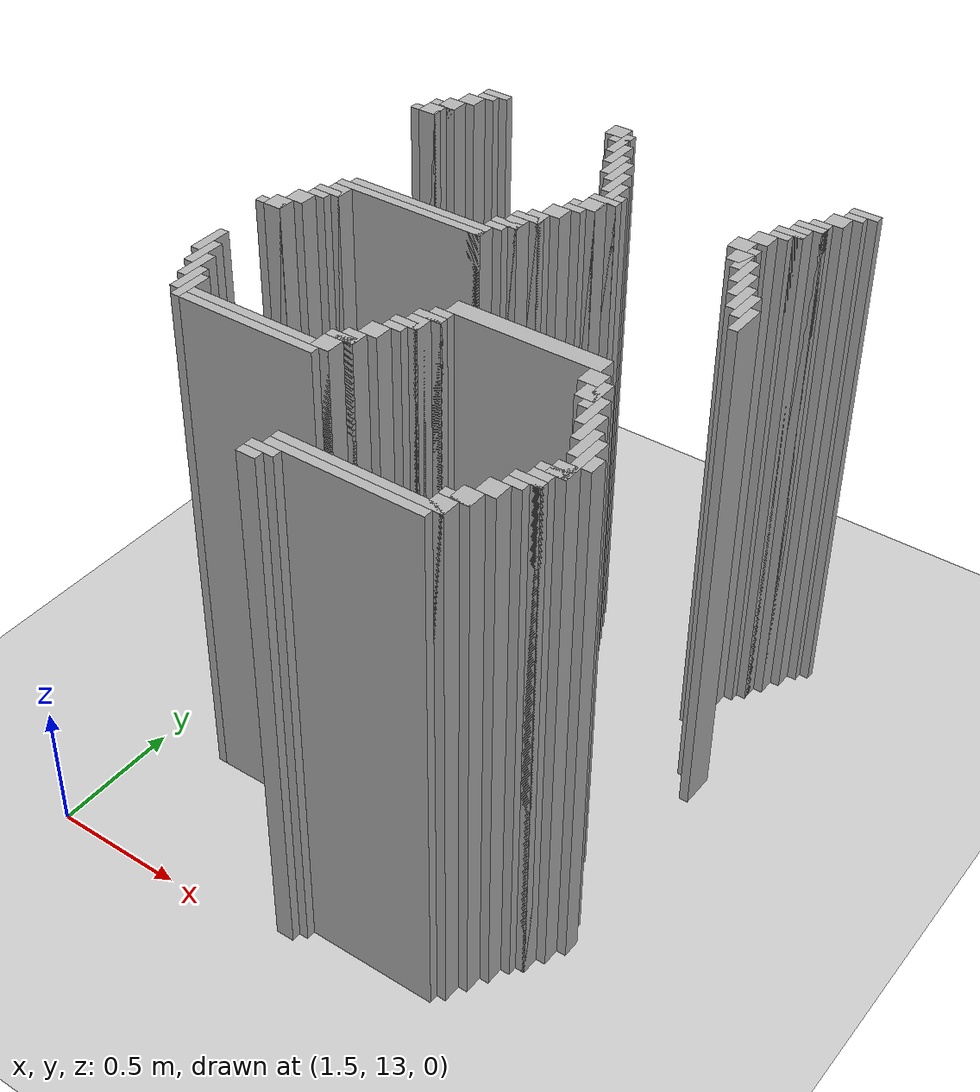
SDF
<sdf version="1.6">
 <world name="slam_world">
  <model name="ground_plane">
   <static>true</static>
   <link name="link">
    <collision name="collision">
     <geometry><plane><normal>0 0 1</normal><size>100 100</size></plane></geometry>
    </collision>
    <visual name="visual">
     <geometry><plane><normal>0 0 1</normal><size>100 100</size></plane></geometry>
     <material>
      <ambient>0.8 0.8 0.8 1</ambient>
      <diffuse>0.8 0.8 0.8 1</diffuse>
      <specular>0.8 0.8 0.8 1</specular>
     </material>
    </visual>
   </link>
  </model>
  <model name="wall_721">
   <static>true</static>
   <pose>2.262180974477958 15.243619489559164 1.0 0 0 0</pose>
   <link name="link">
    <collision name="collision">
     <geometry><box><size>0.06960556844547564 0.06960556844547564 2.0</size></box></geometry>
    </collision>
    <visual name="visual">
     <geometry><box><size>0.06960556844547564 0.06960556844547564 2.0</size></box></geometry>
     <material><ambient>0.5 0.5 0.5 1</ambient><diffuse>0.7 0.7 0.7 1</diffuse></material>
    </visual>
   </link>
  </model>
  <model name="wall_731">
   <static>true</static>
   <pose>1.75754060324826 15.226218097447795 1.0 0 0 0</pose>
   <link name="link">
    <collision name="collision">
     <geometry><box><size>0.10440835266821345 0.03480278422273782 2.0</size></box></geometry>
    </collision>
    <visual name="visual">
     <geometry><box><size>0.10440835266821345 0.03480278422273782 2.0</size></box></geometry>
     <material><ambient>0.5 0.5 0.5 1</ambient><diffuse>0.7 0.7 0.7 1</diffuse></material>
    </visual>
   </link>
  </model>
  <model name="wall_732">
   <static>true</static>
   <pose>2.3143851508120648 15.174013921113689 1.0 0 0 0</pose>
   <link name="link">
    <collision name="collision">
     <geometry><box><size>0.03480278422273782 0.13921113689095127 2.0</size></box></geometry>
    </collision>
    <visual name="visual">
     <geometry><box><size>0.03480278422273782 0.13921113689095127 2.0</size></box></geometry>
     <material><ambient>0.5 0.5 0.5 1</ambient><diffuse>0.7 0.7 0.7 1</diffuse></material>
    </visual>
   </link>
  </model>
  <model name="wall_733">
   <static>true</static>
   <pose>3.219257540603248 15.226218097447795 1.0 0 0 0</pose>
   <link name="link">
    <collision name="collision">
     <geometry><box><size>0.10440835266821345 0.03480278422273782 2.0</size></box></geometry>
    </collision>
    <visual name="visual">
     <geometry><box><size>0.10440835266821345 0.03480278422273782 2.0</size></box></geometry>
     <material><ambient>0.5 0.5 0.5 1</ambient><diffuse>0.7 0.7 0.7 1</diffuse></material>
    </visual>
   </link>
  </model>
  <model name="wall_747">
   <static>true</static>
   <pose>1.740139211136891 15.191415313225058 1.0 0 0 0</pose>
   <link name="link">
    <collision name="collision">
     <geometry><box><size>0.06960556844547564 0.03480278422273782 2.0</size></box></geometry>
    </collision>
    <visual name="visual">
     <geometry><box><size>0.06960556844547564 0.03480278422273782 2.0</size></box></geometry>
     <material><ambient>0.5 0.5 0.5 1</ambient><diffuse>0.7 0.7 0.7 1</diffuse></material>
    </visual>
   </link>
  </model>
  <model name="wall_748">
   <static>true</static>
   <pose>2.296983758700696 15.191415313225058 1.0 0 0 0</pose>
   <link name="link">
    <collision name="collision">
     <geometry><box><size>0.06960556844547564 0.03480278422273782 2.0</size></box></geometry>
    </collision>
    <visual name="visual">
     <geometry><box><size>0.06960556844547564 0.03480278422273782 2.0</size></box></geometry>
     <material><ambient>0.5 0.5 0.5 1</ambient><diffuse>0.7 0.7 0.7 1</diffuse></material>
    </visual>
   </link>
  </model>
  <model name="wall_749">
   <static>true</static>
   <pose>3.201856148491879 15.191415313225058 1.0 0 0 0</pose>
   <link name="link">
    <collision name="collision">
     <geometry><box><size>0.06960556844547564 0.03480278422273782 2.0</size></box></geometry>
    </collision>
    <visual name="visual">
     <geometry><box><size>0.06960556844547564 0.03480278422273782 2.0</size></box></geometry>
     <material><ambient>0.5 0.5 0.5 1</ambient><diffuse>0.7 0.7 0.7 1</diffuse></material>
    </visual>
   </link>
  </model>
  <model name="wall_764">
   <static>true</static>
   <pose>1.705336426914153 15.139211136890951 1.0 0 0 0</pose>
   <link name="link">
    <collision name="collision">
     <geometry><box><size>0.06960556844547564 0.06960556844547564 2.0</size></box></geometry>
    </collision>
    <visual name="visual">
     <geometry><box><size>0.06960556844547564 0.06960556844547564 2.0</size></box></geometry>
     <material><ambient>0.5 0.5 0.5 1</ambient><diffuse>0.7 0.7 0.7 1</diffuse></material>
    </visual>
   </link>
  </model>
  <model name="wall_765">
   <static>true</static>
   <pose>2.3491879350348026 15.104408352668212 1.0 0 0 0</pose>
   <link name="link">
    <collision name="collision">
     <geometry><box><size>0.03480278422273782 0.13921113689095127 2.0</size></box></geometry>
    </collision>
    <visual name="visual">
     <geometry><box><size>0.03480278422273782 0.13921113689095127 2.0</size></box></geometry>
     <material><ambient>0.5 0.5 0.5 1</ambient><diffuse>0.7 0.7 0.7 1</diffuse></material>
    </visual>
   </link>
  </model>
  <model name="wall_766">
   <static>true</static>
   <pose>3.167053364269141 15.139211136890951 1.0 0 0 0</pose>
   <link name="link">
    <collision name="collision">
     <geometry><box><size>0.06960556844547564 0.06960556844547564 2.0</size></box></geometry>
    </collision>
    <visual name="visual">
     <geometry><box><size>0.06960556844547564 0.06960556844547564 2.0</size></box></geometry>
     <material><ambient>0.5 0.5 0.5 1</ambient><diffuse>0.7 0.7 0.7 1</diffuse></material>
    </visual>
   </link>
  </model>
  <model name="wall_781">
   <static>true</static>
   <pose>1.6705336426914152 15.069605568445475 1.0 0 0 0</pose>
   <link name="link">
    <collision name="collision">
     <geometry><box><size>0.06960556844547564 0.06960556844547564 2.0</size></box></geometry>
    </collision>
    <visual name="visual">
     <geometry><box><size>0.06960556844547564 0.06960556844547564 2.0</size></box></geometry>
     <material><ambient>0.5 0.5 0.5 1</ambient><diffuse>0.7 0.7 0.7 1</diffuse></material>
    </visual>
   </link>
  </model>
  <model name="wall_782">
   <static>true</static>
   <pose>2.3839907192575405 15.034802784222737 1.0 0 0 0</pose>
   <link name="link">
    <collision name="collision">
     <geometry><box><size>0.03480278422273782 0.13921113689095127 2.0</size></box></geometry>
    </collision>
    <visual name="visual">
     <geometry><box><size>0.03480278422273782 0.13921113689095127 2.0</size></box></geometry>
     <material><ambient>0.5 0.5 0.5 1</ambient><diffuse>0.7 0.7 0.7 1</diffuse></material>
    </visual>
   </link>
  </model>
  <model name="wall_783">
   <static>true</static>
   <pose>3.1322505800464038 15.069605568445475 1.0 0 0 0</pose>
   <link name="link">
    <collision name="collision">
     <geometry><box><size>0.06960556844547564 0.06960556844547564 2.0</size></box></geometry>
    </collision>
    <visual name="visual">
     <geometry><box><size>0.06960556844547564 0.06960556844547564 2.0</size></box></geometry>
     <material><ambient>0.5 0.5 0.5 1</ambient><diffuse>0.7 0.7 0.7 1</diffuse></material>
    </visual>
   </link>
  </model>
  <model name="wall_798">
   <static>true</static>
   <pose>1.6531322505800463 15.052204176334106 1.0 0 0 0</pose>
   <link name="link">
    <collision name="collision">
     <geometry><box><size>0.10440835266821345 0.03480278422273782 2.0</size></box></geometry>
    </collision>
    <visual name="visual">
     <geometry><box><size>0.10440835266821345 0.03480278422273782 2.0</size></box></geometry>
     <material><ambient>0.5 0.5 0.5 1</ambient><diffuse>0.7 0.7 0.7 1</diffuse></material>
    </visual>
   </link>
  </model>
  <model name="wall_799">
   <static>true</static>
   <pose>2.4187935034802783 15.0 1.0 0 0 0</pose>
   <link name="link">
    <collision name="collision">
     <geometry><box><size>0.03480278422273782 0.13921113689095127 2.0</size></box></geometry>
    </collision>
    <visual name="visual">
     <geometry><box><size>0.03480278422273782 0.13921113689095127 2.0</size></box></geometry>
     <material><ambient>0.5 0.5 0.5 1</ambient><diffuse>0.7 0.7 0.7 1</diffuse></material>
    </visual>
   </link>
  </model>
  <model name="wall_800">
   <static>true</static>
   <pose>3.1148491879350346 15.052204176334106 1.0 0 0 0</pose>
   <link name="link">
    <collision name="collision">
     <geometry><box><size>0.10440835266821345 0.03480278422273782 2.0</size></box></geometry>
    </collision>
    <visual name="visual">
     <geometry><box><size>0.10440835266821345 0.03480278422273782 2.0</size></box></geometry>
     <material><ambient>0.5 0.5 0.5 1</ambient><diffuse>0.7 0.7 0.7 1</diffuse></material>
    </visual>
   </link>
  </model>
  <model name="wall_815">
   <static>true</static>
   <pose>1.6357308584686774 15.0 1.0 0 0 0</pose>
   <link name="link">
    <collision name="collision">
     <geometry><box><size>0.06960556844547564 0.06960556844547564 2.0</size></box></geometry>
    </collision>
    <visual name="visual">
     <geometry><box><size>0.06960556844547564 0.06960556844547564 2.0</size></box></geometry>
     <material><ambient>0.5 0.5 0.5 1</ambient><diffuse>0.7 0.7 0.7 1</diffuse></material>
    </visual>
   </link>
  </model>
  <model name="wall_816">
   <static>true</static>
   <pose>3.097447795823666 15.0 1.0 0 0 0</pose>
   <link name="link">
    <collision name="collision">
     <geometry><box><size>0.06960556844547564 0.06960556844547564 2.0</size></box></geometry>
    </collision>
    <visual name="visual">
     <geometry><box><size>0.06960556844547564 0.06960556844547564 2.0</size></box></geometry>
     <material><ambient>0.5 0.5 0.5 1</ambient><diffuse>0.7 0.7 0.7 1</diffuse></material>
    </visual>
   </link>
  </model>
  <model name="wall_825">
   <static>true</static>
   <pose>1.6183294663573085 14.982598607888631 1.0 0 0 0</pose>
   <link name="link">
    <collision name="collision">
     <geometry><box><size>0.10440835266821345 0.03480278422273782 2.0</size></box></geometry>
    </collision>
    <visual name="visual">
     <geometry><box><size>0.10440835266821345 0.03480278422273782 2.0</size></box></geometry>
     <material><ambient>0.5 0.5 0.5 1</ambient><diffuse>0.7 0.7 0.7 1</diffuse></material>
    </visual>
   </link>
  </model>
  <model name="wall_826">
   <static>true</static>
   <pose>2.453596287703016 14.930394431554523 1.0 0 0 0</pose>
   <link name="link">
    <collision name="collision">
     <geometry><box><size>0.03480278422273782 0.13921113689095127 2.0</size></box></geometry>
    </collision>
    <visual name="visual">
     <geometry><box><size>0.03480278422273782 0.13921113689095127 2.0</size></box></geometry>
     <material><ambient>0.5 0.5 0.5 1</ambient><diffuse>0.7 0.7 0.7 1</diffuse></material>
    </visual>
   </link>
  </model>
  <model name="wall_827">
   <static>true</static>
   <pose>3.0800464037122968 14.982598607888631 1.0 0 0 0</pose>
   <link name="link">
    <collision name="collision">
     <geometry><box><size>0.10440835266821345 0.03480278422273782 2.0</size></box></geometry>
    </collision>
    <visual name="visual">
     <geometry><box><size>0.10440835266821345 0.03480278422273782 2.0</size></box></geometry>
     <material><ambient>0.5 0.5 0.5 1</ambient><diffuse>0.7 0.7 0.7 1</diffuse></material>
    </visual>
   </link>
  </model>
  <model name="wall_843">
   <static>true</static>
   <pose>3.062645011600928 14.947795823665892 1.0 0 0 0</pose>
   <link name="link">
    <collision name="collision">
     <geometry><box><size>0.06960556844547564 0.03480278422273782 2.0</size></box></geometry>
    </collision>
    <visual name="visual">
     <geometry><box><size>0.06960556844547564 0.03480278422273782 2.0</size></box></geometry>
     <material><ambient>0.5 0.5 0.5 1</ambient><diffuse>0.7 0.7 0.7 1</diffuse></material>
    </visual>
   </link>
  </model>
  <model name="wall_852">
   <static>true</static>
   <pose>2.488399071925754 14.825986078886311 1.0 0 0 0</pose>
   <link name="link">
    <collision name="collision">
     <geometry><box><size>0.03480278422273782 0.2088167053364269 2.0</size></box></geometry>
    </collision>
    <visual name="visual">
     <geometry><box><size>0.03480278422273782 0.2088167053364269 2.0</size></box></geometry>
     <material><ambient>0.5 0.5 0.5 1</ambient><diffuse>0.7 0.7 0.7 1</diffuse></material>
    </visual>
   </link>
  </model>
  <model name="wall_853">
   <static>true</static>
   <pose>3.02784222737819 14.895591647331786 1.0 0 0 0</pose>
   <link name="link">
    <collision name="collision">
     <geometry><box><size>0.06960556844547564 0.06960556844547564 2.0</size></box></geometry>
    </collision>
    <visual name="visual">
     <geometry><box><size>0.06960556844547564 0.06960556844547564 2.0</size></box></geometry>
     <material><ambient>0.5 0.5 0.5 1</ambient><diffuse>0.7 0.7 0.7 1</diffuse></material>
    </visual>
   </link>
  </model>
  <model name="wall_876">
   <static>true</static>
   <pose>2.523201856148492 14.825986078886311 1.0 0 0 0</pose>
   <link name="link">
    <collision name="collision">
     <geometry><box><size>0.03480278422273782 0.06960556844547564 2.0</size></box></geometry>
    </collision>
    <visual name="visual">
     <geometry><box><size>0.03480278422273782 0.06960556844547564 2.0</size></box></geometry>
     <material><ambient>0.5 0.5 0.5 1</ambient><diffuse>0.7 0.7 0.7 1</diffuse></material>
    </visual>
   </link>
  </model>
  <model name="wall_877">
   <static>true</static>
   <pose>2.9930394431554523 14.825986078886311 1.0 0 0 0</pose>
   <link name="link">
    <collision name="collision">
     <geometry><box><size>0.06960556844547564 0.06960556844547564 2.0</size></box></geometry>
    </collision>
    <visual name="visual">
     <geometry><box><size>0.06960556844547564 0.06960556844547564 2.0</size></box></geometry>
     <material><ambient>0.5 0.5 0.5 1</ambient><diffuse>0.7 0.7 0.7 1</diffuse></material>
    </visual>
   </link>
  </model>
  <model name="wall_892">
   <static>true</static>
   <pose>2.488399071925754 14.80858468677494 1.0 0 0 0</pose>
   <link name="link">
    <collision name="collision">
     <geometry><box><size>0.10440835266821345 0.03480278422273782 2.0</size></box></geometry>
    </collision>
    <visual name="visual">
     <geometry><box><size>0.10440835266821345 0.03480278422273782 2.0</size></box></geometry>
     <material><ambient>0.5 0.5 0.5 1</ambient><diffuse>0.7 0.7 0.7 1</diffuse></material>
    </visual>
   </link>
  </model>
  <model name="wall_893">
   <static>true</static>
   <pose>3.045243619489559 14.756380510440835 1.0 0 0 0</pose>
   <link name="link">
    <collision name="collision">
     <geometry><box><size>0.03480278422273782 0.13921113689095127 2.0</size></box></geometry>
    </collision>
    <visual name="visual">
     <geometry><box><size>0.03480278422273782 0.13921113689095127 2.0</size></box></geometry>
     <material><ambient>0.5 0.5 0.5 1</ambient><diffuse>0.7 0.7 0.7 1</diffuse></material>
    </visual>
   </link>
  </model>
  <model name="wall_905">
   <static>true</static>
   <pose>2.470997679814385 14.756380510440835 1.0 0 0 0</pose>
   <link name="link">
    <collision name="collision">
     <geometry><box><size>0.06960556844547564 0.06960556844547564 2.0</size></box></geometry>
    </collision>
    <visual name="visual">
     <geometry><box><size>0.06960556844547564 0.06960556844547564 2.0</size></box></geometry>
     <material><ambient>0.5 0.5 0.5 1</ambient><diffuse>0.7 0.7 0.7 1</diffuse></material>
    </visual>
   </link>
  </model>
  <model name="wall_906">
   <static>true</static>
   <pose>3.02784222737819 14.756380510440835 1.0 0 0 0</pose>
   <link name="link">
    <collision name="collision">
     <geometry><box><size>0.06960556844547564 0.06960556844547564 2.0</size></box></geometry>
    </collision>
    <visual name="visual">
     <geometry><box><size>0.06960556844547564 0.06960556844547564 2.0</size></box></geometry>
     <material><ambient>0.5 0.5 0.5 1</ambient><diffuse>0.7 0.7 0.7 1</diffuse></material>
    </visual>
   </link>
  </model>
  <model name="wall_920">
   <static>true</static>
   <pose>2.453596287703016 14.738979118329466 1.0 0 0 0</pose>
   <link name="link">
    <collision name="collision">
     <geometry><box><size>0.10440835266821345 0.03480278422273782 2.0</size></box></geometry>
    </collision>
    <visual name="visual">
     <geometry><box><size>0.10440835266821345 0.03480278422273782 2.0</size></box></geometry>
     <material><ambient>0.5 0.5 0.5 1</ambient><diffuse>0.7 0.7 0.7 1</diffuse></material>
    </visual>
   </link>
  </model>
  <model name="wall_921">
   <static>true</static>
   <pose>3.0800464037122968 14.68677494199536 1.0 0 0 0</pose>
   <link name="link">
    <collision name="collision">
     <geometry><box><size>0.03480278422273782 0.13921113689095127 2.0</size></box></geometry>
    </collision>
    <visual name="visual">
     <geometry><box><size>0.03480278422273782 0.13921113689095127 2.0</size></box></geometry>
     <material><ambient>0.5 0.5 0.5 1</ambient><diffuse>0.7 0.7 0.7 1</diffuse></material>
    </visual>
   </link>
  </model>
  <model name="wall_934">
   <static>true</static>
   <pose>2.436194895591647 14.704176334106728 1.0 0 0 0</pose>
   <link name="link">
    <collision name="collision">
     <geometry><box><size>0.06960556844547564 0.03480278422273782 2.0</size></box></geometry>
    </collision>
    <visual name="visual">
     <geometry><box><size>0.06960556844547564 0.03480278422273782 2.0</size></box></geometry>
     <material><ambient>0.5 0.5 0.5 1</ambient><diffuse>0.7 0.7 0.7 1</diffuse></material>
    </visual>
   </link>
  </model>
  <model name="wall_943">
   <static>true</static>
   <pose>2.4013921113689096 14.65197215777262 1.0 0 0 0</pose>
   <link name="link">
    <collision name="collision">
     <geometry><box><size>0.06960556844547564 0.06960556844547564 2.0</size></box></geometry>
    </collision>
    <visual name="visual">
     <geometry><box><size>0.06960556844547564 0.06960556844547564 2.0</size></box></geometry>
     <material><ambient>0.5 0.5 0.5 1</ambient><diffuse>0.7 0.7 0.7 1</diffuse></material>
    </visual>
   </link>
  </model>
  <model name="wall_944">
   <static>true</static>
   <pose>3.1148491879350346 14.617169373549883 1.0 0 0 0</pose>
   <link name="link">
    <collision name="collision">
     <geometry><box><size>0.03480278422273782 0.13921113689095127 2.0</size></box></geometry>
    </collision>
    <visual name="visual">
     <geometry><box><size>0.03480278422273782 0.13921113689095127 2.0</size></box></geometry>
     <material><ambient>0.5 0.5 0.5 1</ambient><diffuse>0.7 0.7 0.7 1</diffuse></material>
    </visual>
   </link>
  </model>
  <model name="wall_958">
   <static>true</static>
   <pose>2.3665893271461718 14.582366589327146 1.0 0 0 0</pose>
   <link name="link">
    <collision name="collision">
     <geometry><box><size>0.06960556844547564 0.06960556844547564 2.0</size></box></geometry>
    </collision>
    <visual name="visual">
     <geometry><box><size>0.06960556844547564 0.06960556844547564 2.0</size></box></geometry>
     <material><ambient>0.5 0.5 0.5 1</ambient><diffuse>0.7 0.7 0.7 1</diffuse></material>
    </visual>
   </link>
  </model>
  <model name="wall_959">
   <static>true</static>
   <pose>3.1496519721577725 14.547563805104408 1.0 0 0 0</pose>
   <link name="link">
    <collision name="collision">
     <geometry><box><size>0.03480278422273782 0.13921113689095127 2.0</size></box></geometry>
    </collision>
    <visual name="visual">
     <geometry><box><size>0.03480278422273782 0.13921113689095127 2.0</size></box></geometry>
     <material><ambient>0.5 0.5 0.5 1</ambient><diffuse>0.7 0.7 0.7 1</diffuse></material>
    </visual>
   </link>
  </model>
  <model name="wall_973">
   <static>true</static>
   <pose>2.3491879350348026 14.564965197215777 1.0 0 0 0</pose>
   <link name="link">
    <collision name="collision">
     <geometry><box><size>0.10440835266821345 0.03480278422273782 2.0</size></box></geometry>
    </collision>
    <visual name="visual">
     <geometry><box><size>0.10440835266821345 0.03480278422273782 2.0</size></box></geometry>
     <material><ambient>0.5 0.5 0.5 1</ambient><diffuse>0.7 0.7 0.7 1</diffuse></material>
    </visual>
   </link>
  </model>
  <model name="wall_974">
   <static>true</static>
   <pose>3.1844547563805103 14.512761020881669 1.0 0 0 0</pose>
   <link name="link">
    <collision name="collision">
     <geometry><box><size>0.03480278422273782 0.13921113689095127 2.0</size></box></geometry>
    </collision>
    <visual name="visual">
     <geometry><box><size>0.03480278422273782 0.13921113689095127 2.0</size></box></geometry>
     <material><ambient>0.5 0.5 0.5 1</ambient><diffuse>0.7 0.7 0.7 1</diffuse></material>
    </visual>
   </link>
  </model>
  <model name="wall_987">
   <static>true</static>
   <pose>2.331786542923434 14.512761020881669 1.0 0 0 0</pose>
   <link name="link">
    <collision name="collision">
     <geometry><box><size>0.06960556844547564 0.06960556844547564 2.0</size></box></geometry>
    </collision>
    <visual name="visual">
     <geometry><box><size>0.06960556844547564 0.06960556844547564 2.0</size></box></geometry>
     <material><ambient>0.5 0.5 0.5 1</ambient><diffuse>0.7 0.7 0.7 1</diffuse></material>
    </visual>
   </link>
  </model>
  <model name="wall_994">
   <static>true</static>
   <pose>2.3143851508120648 14.4953596287703 1.0 0 0 0</pose>
   <link name="link">
    <collision name="collision">
     <geometry><box><size>0.10440835266821345 0.03480278422273782 2.0</size></box></geometry>
    </collision>
    <visual name="visual">
     <geometry><box><size>0.10440835266821345 0.03480278422273782 2.0</size></box></geometry>
     <material><ambient>0.5 0.5 0.5 1</ambient><diffuse>0.7 0.7 0.7 1</diffuse></material>
    </visual>
   </link>
  </model>
  <model name="wall_995">
   <static>true</static>
   <pose>3.219257540603248 14.443155452436194 1.0 0 0 0</pose>
   <link name="link">
    <collision name="collision">
     <geometry><box><size>0.03480278422273782 0.13921113689095127 2.0</size></box></geometry>
    </collision>
    <visual name="visual">
     <geometry><box><size>0.03480278422273782 0.13921113689095127 2.0</size></box></geometry>
     <material><ambient>0.5 0.5 0.5 1</ambient><diffuse>0.7 0.7 0.7 1</diffuse></material>
    </visual>
   </link>
  </model>
  <model name="wall_1008">
   <static>true</static>
   <pose>2.296983758700696 14.460556844547563 1.0 0 0 0</pose>
   <link name="link">
    <collision name="collision">
     <geometry><box><size>0.06960556844547564 0.03480278422273782 2.0</size></box></geometry>
    </collision>
    <visual name="visual">
     <geometry><box><size>0.06960556844547564 0.03480278422273782 2.0</size></box></geometry>
     <material><ambient>0.5 0.5 0.5 1</ambient><diffuse>0.7 0.7 0.7 1</diffuse></material>
    </visual>
   </link>
  </model>
  <model name="wall_1014">
   <static>true</static>
   <pose>2.0185614849187936 14.408352668213457 1.0 0 0 0</pose>
   <link name="link">
    <collision name="collision">
     <geometry><box><size>0.5568445475638051 0.06960556844547564 2.0</size></box></geometry>
    </collision>
    <visual name="visual">
     <geometry><box><size>0.5568445475638051 0.06960556844547564 2.0</size></box></geometry>
     <material><ambient>0.5 0.5 0.5 1</ambient><diffuse>0.7 0.7 0.7 1</diffuse></material>
    </visual>
   </link>
  </model>
  <model name="wall_1027">
   <static>true</static>
   <pose>2.0011600928074245 14.390951276102088 1.0 0 0 0</pose>
   <link name="link">
    <collision name="collision">
     <geometry><box><size>0.5916473317865429 0.03480278422273782 2.0</size></box></geometry>
    </collision>
    <visual name="visual">
     <geometry><box><size>0.5916473317865429 0.03480278422273782 2.0</size></box></geometry>
     <material><ambient>0.5 0.5 0.5 1</ambient><diffuse>0.7 0.7 0.7 1</diffuse></material>
    </visual>
   </link>
  </model>
  <model name="wall_1039">
   <static>true</static>
   <pose>1.740139211136891 14.33874709976798 1.0 0 0 0</pose>
   <link name="link">
    <collision name="collision">
     <geometry><box><size>0.06960556844547564 0.06960556844547564 2.0</size></box></geometry>
    </collision>
    <visual name="visual">
     <geometry><box><size>0.06960556844547564 0.06960556844547564 2.0</size></box></geometry>
     <material><ambient>0.5 0.5 0.5 1</ambient><diffuse>0.7 0.7 0.7 1</diffuse></material>
    </visual>
   </link>
  </model>
  <model name="wall_1052">
   <static>true</static>
   <pose>1.722737819025522 14.321345707656612 1.0 0 0 0</pose>
   <link name="link">
    <collision name="collision">
     <geometry><box><size>0.10440835266821345 0.03480278422273782 2.0</size></box></geometry>
    </collision>
    <visual name="visual">
     <geometry><box><size>0.10440835266821345 0.03480278422273782 2.0</size></box></geometry>
     <material><ambient>0.5 0.5 0.5 1</ambient><diffuse>0.7 0.7 0.7 1</diffuse></material>
    </visual>
   </link>
  </model>
  <model name="wall_1065">
   <static>true</static>
   <pose>1.705336426914153 14.286542923433874 1.0 0 0 0</pose>
   <link name="link">
    <collision name="collision">
     <geometry><box><size>0.06960556844547564 0.03480278422273782 2.0</size></box></geometry>
    </collision>
    <visual name="visual">
     <geometry><box><size>0.06960556844547564 0.03480278422273782 2.0</size></box></geometry>
     <material><ambient>0.5 0.5 0.5 1</ambient><diffuse>0.7 0.7 0.7 1</diffuse></material>
    </visual>
   </link>
  </model>
  <model name="wall_1073">
   <static>true</static>
   <pose>1.6705336426914152 14.234338747099768 1.0 0 0 0</pose>
   <link name="link">
    <collision name="collision">
     <geometry><box><size>0.06960556844547564 0.06960556844547564 2.0</size></box></geometry>
    </collision>
    <visual name="visual">
     <geometry><box><size>0.06960556844547564 0.06960556844547564 2.0</size></box></geometry>
     <material><ambient>0.5 0.5 0.5 1</ambient><diffuse>0.7 0.7 0.7 1</diffuse></material>
    </visual>
   </link>
  </model>
  <model name="wall_1086">
   <static>true</static>
   <pose>1.6357308584686774 14.164733178654291 1.0 0 0 0</pose>
   <link name="link">
    <collision name="collision">
     <geometry><box><size>0.06960556844547564 0.06960556844547564 2.0</size></box></geometry>
    </collision>
    <visual name="visual">
     <geometry><box><size>0.06960556844547564 0.06960556844547564 2.0</size></box></geometry>
     <material><ambient>0.5 0.5 0.5 1</ambient><diffuse>0.7 0.7 0.7 1</diffuse></material>
    </visual>
   </link>
  </model>
  <model name="wall_1099">
   <static>true</static>
   <pose>1.6183294663573085 14.147331786542923 1.0 0 0 0</pose>
   <link name="link">
    <collision name="collision">
     <geometry><box><size>0.10440835266821345 0.03480278422273782 2.0</size></box></geometry>
    </collision>
    <visual name="visual">
     <geometry><box><size>0.10440835266821345 0.03480278422273782 2.0</size></box></geometry>
     <material><ambient>0.5 0.5 0.5 1</ambient><diffuse>0.7 0.7 0.7 1</diffuse></material>
    </visual>
   </link>
  </model>
  <model name="wall_1140">
   <static>true</static>
   <pose>2.7494199535962878 13.990719257540603 1.0 0 0 0</pose>
   <link name="link">
    <collision name="collision">
     <geometry><box><size>0.5568445475638051 0.06960556844547564 2.0</size></box></geometry>
    </collision>
    <visual name="visual">
     <geometry><box><size>0.5568445475638051 0.06960556844547564 2.0</size></box></geometry>
     <material><ambient>0.5 0.5 0.5 1</ambient><diffuse>0.7 0.7 0.7 1</diffuse></material>
    </visual>
   </link>
  </model>
  <model name="wall_1155">
   <static>true</static>
   <pose>2.470997679814385 13.921113689095128 1.0 0 0 0</pose>
   <link name="link">
    <collision name="collision">
     <geometry><box><size>0.06960556844547564 0.06960556844547564 2.0</size></box></geometry>
    </collision>
    <visual name="visual">
     <geometry><box><size>0.06960556844547564 0.06960556844547564 2.0</size></box></geometry>
     <material><ambient>0.5 0.5 0.5 1</ambient><diffuse>0.7 0.7 0.7 1</diffuse></material>
    </visual>
   </link>
  </model>
  <model name="wall_1156">
   <static>true</static>
   <pose>3.02784222737819 13.921113689095128 1.0 0 0 0</pose>
   <link name="link">
    <collision name="collision">
     <geometry><box><size>0.06960556844547564 0.06960556844547564 2.0</size></box></geometry>
    </collision>
    <visual name="visual">
     <geometry><box><size>0.06960556844547564 0.06960556844547564 2.0</size></box></geometry>
     <material><ambient>0.5 0.5 0.5 1</ambient><diffuse>0.7 0.7 0.7 1</diffuse></material>
    </visual>
   </link>
  </model>
  <model name="wall_1170">
   <static>true</static>
   <pose>1.6183294663573085 13.851508120649651 1.0 0 0 0</pose>
   <link name="link">
    <collision name="collision">
     <geometry><box><size>0.03480278422273782 0.13921113689095127 2.0</size></box></geometry>
    </collision>
    <visual name="visual">
     <geometry><box><size>0.03480278422273782 0.13921113689095127 2.0</size></box></geometry>
     <material><ambient>0.5 0.5 0.5 1</ambient><diffuse>0.7 0.7 0.7 1</diffuse></material>
    </visual>
   </link>
  </model>
  <model name="wall_1171">
   <static>true</static>
   <pose>2.453596287703016 13.903712296983759 1.0 0 0 0</pose>
   <link name="link">
    <collision name="collision">
     <geometry><box><size>0.10440835266821345 0.03480278422273782 2.0</size></box></geometry>
    </collision>
    <visual name="visual">
     <geometry><box><size>0.10440835266821345 0.03480278422273782 2.0</size></box></geometry>
     <material><ambient>0.5 0.5 0.5 1</ambient><diffuse>0.7 0.7 0.7 1</diffuse></material>
    </visual>
   </link>
  </model>
  <model name="wall_1172">
   <static>true</static>
   <pose>3.0800464037122968 13.851508120649651 1.0 0 0 0</pose>
   <link name="link">
    <collision name="collision">
     <geometry><box><size>0.03480278422273782 0.13921113689095127 2.0</size></box></geometry>
    </collision>
    <visual name="visual">
     <geometry><box><size>0.03480278422273782 0.13921113689095127 2.0</size></box></geometry>
     <material><ambient>0.5 0.5 0.5 1</ambient><diffuse>0.7 0.7 0.7 1</diffuse></material>
    </visual>
   </link>
  </model>
  <model name="wall_1187">
   <static>true</static>
   <pose>2.436194895591647 13.851508120649651 1.0 0 0 0</pose>
   <link name="link">
    <collision name="collision">
     <geometry><box><size>0.06960556844547564 0.06960556844547564 2.0</size></box></geometry>
    </collision>
    <visual name="visual">
     <geometry><box><size>0.06960556844547564 0.06960556844547564 2.0</size></box></geometry>
     <material><ambient>0.5 0.5 0.5 1</ambient><diffuse>0.7 0.7 0.7 1</diffuse></material>
    </visual>
   </link>
  </model>
  <model name="wall_1188">
   <static>true</static>
   <pose>3.062645011600928 13.851508120649651 1.0 0 0 0</pose>
   <link name="link">
    <collision name="collision">
     <geometry><box><size>0.06960556844547564 0.06960556844547564 2.0</size></box></geometry>
    </collision>
    <visual name="visual">
     <geometry><box><size>0.06960556844547564 0.06960556844547564 2.0</size></box></geometry>
     <material><ambient>0.5 0.5 0.5 1</ambient><diffuse>0.7 0.7 0.7 1</diffuse></material>
    </visual>
   </link>
  </model>
  <model name="wall_1202">
   <static>true</static>
   <pose>1.6531322505800463 13.781902552204176 1.0 0 0 0</pose>
   <link name="link">
    <collision name="collision">
     <geometry><box><size>0.03480278422273782 0.13921113689095127 2.0</size></box></geometry>
    </collision>
    <visual name="visual">
     <geometry><box><size>0.03480278422273782 0.13921113689095127 2.0</size></box></geometry>
     <material><ambient>0.5 0.5 0.5 1</ambient><diffuse>0.7 0.7 0.7 1</diffuse></material>
    </visual>
   </link>
  </model>
  <model name="wall_1203">
   <static>true</static>
   <pose>2.4187935034802783 13.834106728538282 1.0 0 0 0</pose>
   <link name="link">
    <collision name="collision">
     <geometry><box><size>0.10440835266821345 0.03480278422273782 2.0</size></box></geometry>
    </collision>
    <visual name="visual">
     <geometry><box><size>0.10440835266821345 0.03480278422273782 2.0</size></box></geometry>
     <material><ambient>0.5 0.5 0.5 1</ambient><diffuse>0.7 0.7 0.7 1</diffuse></material>
    </visual>
   </link>
  </model>
  <model name="wall_1204">
   <static>true</static>
   <pose>3.1148491879350346 13.781902552204176 1.0 0 0 0</pose>
   <link name="link">
    <collision name="collision">
     <geometry><box><size>0.03480278422273782 0.13921113689095127 2.0</size></box></geometry>
    </collision>
    <visual name="visual">
     <geometry><box><size>0.03480278422273782 0.13921113689095127 2.0</size></box></geometry>
     <material><ambient>0.5 0.5 0.5 1</ambient><diffuse>0.7 0.7 0.7 1</diffuse></material>
    </visual>
   </link>
  </model>
  <model name="wall_1217">
   <static>true</static>
   <pose>2.4013921113689096 13.799303944315545 1.0 0 0 0</pose>
   <link name="link">
    <collision name="collision">
     <geometry><box><size>0.06960556844547564 0.03480278422273782 2.0</size></box></geometry>
    </collision>
    <visual name="visual">
     <geometry><box><size>0.06960556844547564 0.03480278422273782 2.0</size></box></geometry>
     <material><ambient>0.5 0.5 0.5 1</ambient><diffuse>0.7 0.7 0.7 1</diffuse></material>
    </visual>
   </link>
  </model>
  <model name="wall_1226">
   <static>true</static>
   <pose>1.6879350348027842 13.7122969837587 1.0 0 0 0</pose>
   <link name="link">
    <collision name="collision">
     <geometry><box><size>0.03480278422273782 0.13921113689095127 2.0</size></box></geometry>
    </collision>
    <visual name="visual">
     <geometry><box><size>0.03480278422273782 0.13921113689095127 2.0</size></box></geometry>
     <material><ambient>0.5 0.5 0.5 1</ambient><diffuse>0.7 0.7 0.7 1</diffuse></material>
    </visual>
   </link>
  </model>
  <model name="wall_1227">
   <static>true</static>
   <pose>2.3665893271461718 13.747099767981437 1.0 0 0 0</pose>
   <link name="link">
    <collision name="collision">
     <geometry><box><size>0.06960556844547564 0.06960556844547564 2.0</size></box></geometry>
    </collision>
    <visual name="visual">
     <geometry><box><size>0.06960556844547564 0.06960556844547564 2.0</size></box></geometry>
     <material><ambient>0.5 0.5 0.5 1</ambient><diffuse>0.7 0.7 0.7 1</diffuse></material>
    </visual>
   </link>
  </model>
  <model name="wall_1228">
   <static>true</static>
   <pose>3.1496519721577725 13.7122969837587 1.0 0 0 0</pose>
   <link name="link">
    <collision name="collision">
     <geometry><box><size>0.03480278422273782 0.13921113689095127 2.0</size></box></geometry>
    </collision>
    <visual name="visual">
     <geometry><box><size>0.03480278422273782 0.13921113689095127 2.0</size></box></geometry>
     <material><ambient>0.5 0.5 0.5 1</ambient><diffuse>0.7 0.7 0.7 1</diffuse></material>
    </visual>
   </link>
  </model>
  <model name="wall_1242">
   <static>true</static>
   <pose>1.722737819025522 13.642691415313225 1.0 0 0 0</pose>
   <link name="link">
    <collision name="collision">
     <geometry><box><size>0.03480278422273782 0.13921113689095127 2.0</size></box></geometry>
    </collision>
    <visual name="visual">
     <geometry><box><size>0.03480278422273782 0.13921113689095127 2.0</size></box></geometry>
     <material><ambient>0.5 0.5 0.5 1</ambient><diffuse>0.7 0.7 0.7 1</diffuse></material>
    </visual>
   </link>
  </model>
  <model name="wall_1243">
   <static>true</static>
   <pose>2.331786542923434 13.677494199535962 1.0 0 0 0</pose>
   <link name="link">
    <collision name="collision">
     <geometry><box><size>0.06960556844547564 0.06960556844547564 2.0</size></box></geometry>
    </collision>
    <visual name="visual">
     <geometry><box><size>0.06960556844547564 0.06960556844547564 2.0</size></box></geometry>
     <material><ambient>0.5 0.5 0.5 1</ambient><diffuse>0.7 0.7 0.7 1</diffuse></material>
    </visual>
   </link>
  </model>
  <model name="wall_1244">
   <static>true</static>
   <pose>3.1844547563805103 13.642691415313225 1.0 0 0 0</pose>
   <link name="link">
    <collision name="collision">
     <geometry><box><size>0.03480278422273782 0.13921113689095127 2.0</size></box></geometry>
    </collision>
    <visual name="visual">
     <geometry><box><size>0.03480278422273782 0.13921113689095127 2.0</size></box></geometry>
     <material><ambient>0.5 0.5 0.5 1</ambient><diffuse>0.7 0.7 0.7 1</diffuse></material>
    </visual>
   </link>
  </model>
  <model name="wall_1258">
   <static>true</static>
   <pose>1.75754060324826 13.607888631090487 1.0 0 0 0</pose>
   <link name="link">
    <collision name="collision">
     <geometry><box><size>0.03480278422273782 0.13921113689095127 2.0</size></box></geometry>
    </collision>
    <visual name="visual">
     <geometry><box><size>0.03480278422273782 0.13921113689095127 2.0</size></box></geometry>
     <material><ambient>0.5 0.5 0.5 1</ambient><diffuse>0.7 0.7 0.7 1</diffuse></material>
    </visual>
   </link>
  </model>
  <model name="wall_1259">
   <static>true</static>
   <pose>2.3143851508120648 13.660092807424594 1.0 0 0 0</pose>
   <link name="link">
    <collision name="collision">
     <geometry><box><size>0.10440835266821345 0.03480278422273782 2.0</size></box></geometry>
    </collision>
    <visual name="visual">
     <geometry><box><size>0.10440835266821345 0.03480278422273782 2.0</size></box></geometry>
     <material><ambient>0.5 0.5 0.5 1</ambient><diffuse>0.7 0.7 0.7 1</diffuse></material>
    </visual>
   </link>
  </model>
  <model name="wall_1260">
   <static>true</static>
   <pose>3.219257540603248 13.573085846867748 1.0 0 0 0</pose>
   <link name="link">
    <collision name="collision">
     <geometry><box><size>0.03480278422273782 0.2088167053364269 2.0</size></box></geometry>
    </collision>
    <visual name="visual">
     <geometry><box><size>0.03480278422273782 0.2088167053364269 2.0</size></box></geometry>
     <material><ambient>0.5 0.5 0.5 1</ambient><diffuse>0.7 0.7 0.7 1</diffuse></material>
    </visual>
   </link>
  </model>
  <model name="wall_1273">
   <static>true</static>
   <pose>2.296983758700696 13.607888631090487 1.0 0 0 0</pose>
   <link name="link">
    <collision name="collision">
     <geometry><box><size>0.06960556844547564 0.06960556844547564 2.0</size></box></geometry>
    </collision>
    <visual name="visual">
     <geometry><box><size>0.06960556844547564 0.06960556844547564 2.0</size></box></geometry>
     <material><ambient>0.5 0.5 0.5 1</ambient><diffuse>0.7 0.7 0.7 1</diffuse></material>
    </visual>
   </link>
  </model>
  <model name="wall_1282">
   <static>true</static>
   <pose>2.053364269141531 13.590487238979117 1.0 0 0 0</pose>
   <link name="link">
    <collision name="collision">
     <geometry><box><size>0.5568445475638051 0.03480278422273782 2.0</size></box></geometry>
    </collision>
    <visual name="visual">
     <geometry><box><size>0.5568445475638051 0.03480278422273782 2.0</size></box></geometry>
     <material><ambient>0.5 0.5 0.5 1</ambient><diffuse>0.7 0.7 0.7 1</diffuse></material>
    </visual>
   </link>
  </model>
  <model name="wall_1283">
   <static>true</static>
   <pose>3.254060324825986 13.573085846867748 1.0 0 0 0</pose>
   <link name="link">
    <collision name="collision">
     <geometry><box><size>0.03480278422273782 0.06960556844547564 2.0</size></box></geometry>
    </collision>
    <visual name="visual">
     <geometry><box><size>0.03480278422273782 0.06960556844547564 2.0</size></box></geometry>
     <material><ambient>0.5 0.5 0.5 1</ambient><diffuse>0.7 0.7 0.7 1</diffuse></material>
    </visual>
   </link>
  </model>
  <model name="wall_1296">
   <static>true</static>
   <pose>2.0359628770301623 13.55568445475638 1.0 0 0 0</pose>
   <link name="link">
    <collision name="collision">
     <geometry><box><size>0.5220417633410672 0.03480278422273782 2.0</size></box></geometry>
    </collision>
    <visual name="visual">
     <geometry><box><size>0.5220417633410672 0.03480278422273782 2.0</size></box></geometry>
     <material><ambient>0.5 0.5 0.5 1</ambient><diffuse>0.7 0.7 0.7 1</diffuse></material>
    </visual>
   </link>
  </model>
  <model name="wall_1304">
   <static>true</static>
   <pose>3.201856148491879 13.503480278422273 1.0 0 0 0</pose>
   <link name="link">
    <collision name="collision">
     <geometry><box><size>0.06960556844547564 0.06960556844547564 2.0</size></box></geometry>
    </collision>
    <visual name="visual">
     <geometry><box><size>0.06960556844547564 0.06960556844547564 2.0</size></box></geometry>
     <material><ambient>0.5 0.5 0.5 1</ambient><diffuse>0.7 0.7 0.7 1</diffuse></material>
    </visual>
   </link>
  </model>
  <model name="wall_1318">
   <static>true</static>
   <pose>3.1844547563805103 13.486078886310905 1.0 0 0 0</pose>
   <link name="link">
    <collision name="collision">
     <geometry><box><size>0.10440835266821345 0.03480278422273782 2.0</size></box></geometry>
    </collision>
    <visual name="visual">
     <geometry><box><size>0.10440835266821345 0.03480278422273782 2.0</size></box></geometry>
     <material><ambient>0.5 0.5 0.5 1</ambient><diffuse>0.7 0.7 0.7 1</diffuse></material>
    </visual>
   </link>
  </model>
  <model name="wall_1332">
   <static>true</static>
   <pose>3.167053364269141 13.433874709976797 1.0 0 0 0</pose>
   <link name="link">
    <collision name="collision">
     <geometry><box><size>0.06960556844547564 0.06960556844547564 2.0</size></box></geometry>
    </collision>
    <visual name="visual">
     <geometry><box><size>0.06960556844547564 0.06960556844547564 2.0</size></box></geometry>
     <material><ambient>0.5 0.5 0.5 1</ambient><diffuse>0.7 0.7 0.7 1</diffuse></material>
    </visual>
   </link>
  </model>
  <model name="wall_1346">
   <static>true</static>
   <pose>3.1496519721577725 13.416473317865428 1.0 0 0 0</pose>
   <link name="link">
    <collision name="collision">
     <geometry><box><size>0.10440835266821345 0.03480278422273782 2.0</size></box></geometry>
    </collision>
    <visual name="visual">
     <geometry><box><size>0.10440835266821345 0.03480278422273782 2.0</size></box></geometry>
     <material><ambient>0.5 0.5 0.5 1</ambient><diffuse>0.7 0.7 0.7 1</diffuse></material>
    </visual>
   </link>
  </model>
  <model name="wall_1360">
   <static>true</static>
   <pose>3.1322505800464038 13.38167053364269 1.0 0 0 0</pose>
   <link name="link">
    <collision name="collision">
     <geometry><box><size>0.06960556844547564 0.03480278422273782 2.0</size></box></geometry>
    </collision>
    <visual name="visual">
     <geometry><box><size>0.06960556844547564 0.03480278422273782 2.0</size></box></geometry>
     <material><ambient>0.5 0.5 0.5 1</ambient><diffuse>0.7 0.7 0.7 1</diffuse></material>
    </visual>
   </link>
  </model>
  <model name="wall_1369">
   <static>true</static>
   <pose>3.097447795823666 13.329466357308585 1.0 0 0 0</pose>
   <link name="link">
    <collision name="collision">
     <geometry><box><size>0.06960556844547564 0.06960556844547564 2.0</size></box></geometry>
    </collision>
    <visual name="visual">
     <geometry><box><size>0.06960556844547564 0.06960556844547564 2.0</size></box></geometry>
     <material><ambient>0.5 0.5 0.5 1</ambient><diffuse>0.7 0.7 0.7 1</diffuse></material>
    </visual>
   </link>
  </model>
  <model name="wall_1383">
   <static>true</static>
   <pose>3.062645011600928 13.259860788863108 1.0 0 0 0</pose>
   <link name="link">
    <collision name="collision">
     <geometry><box><size>0.06960556844547564 0.06960556844547564 2.0</size></box></geometry>
    </collision>
    <visual name="visual">
     <geometry><box><size>0.06960556844547564 0.06960556844547564 2.0</size></box></geometry>
     <material><ambient>0.5 0.5 0.5 1</ambient><diffuse>0.7 0.7 0.7 1</diffuse></material>
    </visual>
   </link>
  </model>
  <model name="wall_1397">
   <static>true</static>
   <pose>3.045243619489559 13.24245939675174 1.0 0 0 0</pose>
   <link name="link">
    <collision name="collision">
     <geometry><box><size>0.10440835266821345 0.03480278422273782 2.0</size></box></geometry>
    </collision>
    <visual name="visual">
     <geometry><box><size>0.10440835266821345 0.03480278422273782 2.0</size></box></geometry>
     <material><ambient>0.5 0.5 0.5 1</ambient><diffuse>0.7 0.7 0.7 1</diffuse></material>
    </visual>
   </link>
  </model>
  <model name="wall_1411">
   <static>true</static>
   <pose>3.02784222737819 13.190255220417633 1.0 0 0 0</pose>
   <link name="link">
    <collision name="collision">
     <geometry><box><size>0.06960556844547564 0.06960556844547564 2.0</size></box></geometry>
    </collision>
    <visual name="visual">
     <geometry><box><size>0.06960556844547564 0.06960556844547564 2.0</size></box></geometry>
     <material><ambient>0.5 0.5 0.5 1</ambient><diffuse>0.7 0.7 0.7 1</diffuse></material>
    </visual>
   </link>
  </model>
  <model name="wall_1421">
   <static>true</static>
   <pose>2.7668213457076565 13.172853828306264 1.0 0 0 0</pose>
   <link name="link">
    <collision name="collision">
     <geometry><box><size>0.5916473317865429 0.03480278422273782 2.0</size></box></geometry>
    </collision>
    <visual name="visual">
     <geometry><box><size>0.5916473317865429 0.03480278422273782 2.0</size></box></geometry>
     <material><ambient>0.5 0.5 0.5 1</ambient><diffuse>0.7 0.7 0.7 1</diffuse></material>
    </visual>
   </link>
  </model>
  <model name="wall_1433">
   <static>true</static>
   <pose>2.7494199535962878 13.138051044083527 1.0 0 0 0</pose>
   <link name="link">
    <collision name="collision">
     <geometry><box><size>0.5568445475638051 0.03480278422273782 2.0</size></box></geometry>
    </collision>
    <visual name="visual">
     <geometry><box><size>0.5568445475638051 0.03480278422273782 2.0</size></box></geometry>
     <material><ambient>0.5 0.5 0.5 1</ambient><diffuse>0.7 0.7 0.7 1</diffuse></material>
    </visual>
   </link>
  </model>
  <model name="wall_1444">
   <static>true</static>
   <pose>2.488399071925754 13.103248259860788 1.0 0 0 0</pose>
   <link name="link">
    <collision name="collision">
     <geometry><box><size>0.10440835266821345 0.03480278422273782 2.0</size></box></geometry>
    </collision>
    <visual name="visual">
     <geometry><box><size>0.10440835266821345 0.03480278422273782 2.0</size></box></geometry>
     <material><ambient>0.5 0.5 0.5 1</ambient><diffuse>0.7 0.7 0.7 1</diffuse></material>
    </visual>
   </link>
  </model>
  <model name="wall_1455">
   <static>true</static>
   <pose>2.470997679814385 13.06844547563805 1.0 0 0 0</pose>
   <link name="link">
    <collision name="collision">
     <geometry><box><size>0.06960556844547564 0.03480278422273782 2.0</size></box></geometry>
    </collision>
    <visual name="visual">
     <geometry><box><size>0.06960556844547564 0.03480278422273782 2.0</size></box></geometry>
     <material><ambient>0.5 0.5 0.5 1</ambient><diffuse>0.7 0.7 0.7 1</diffuse></material>
    </visual>
   </link>
  </model>
 </world>
</sdf>
